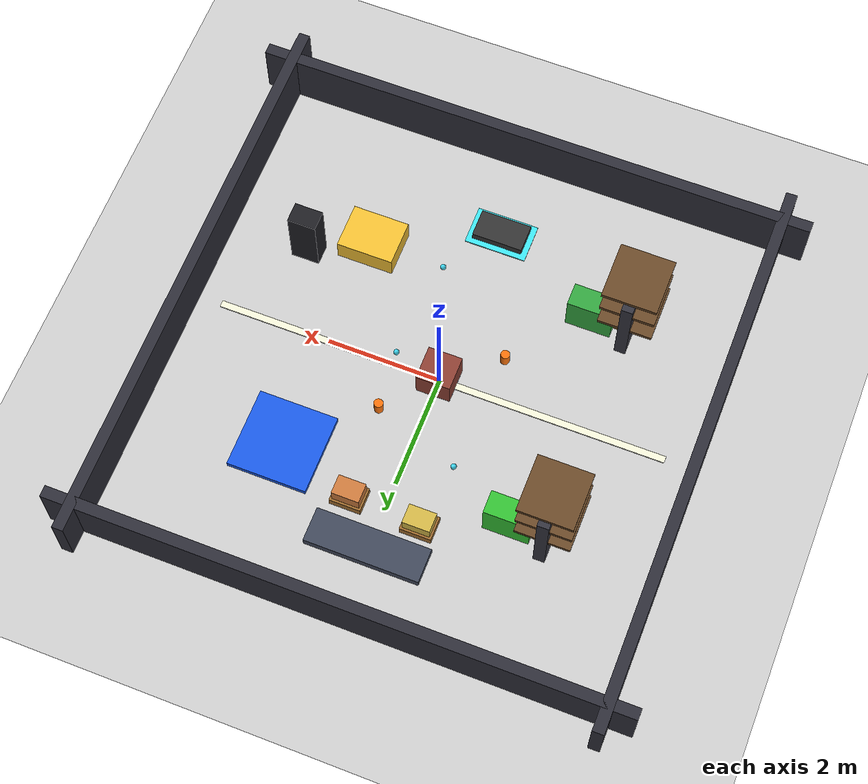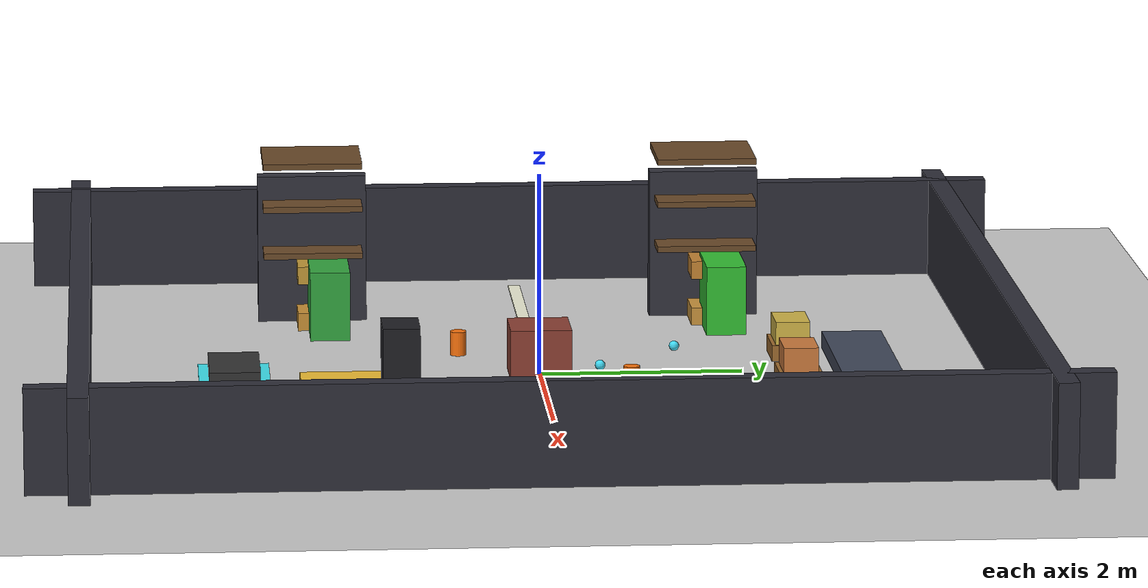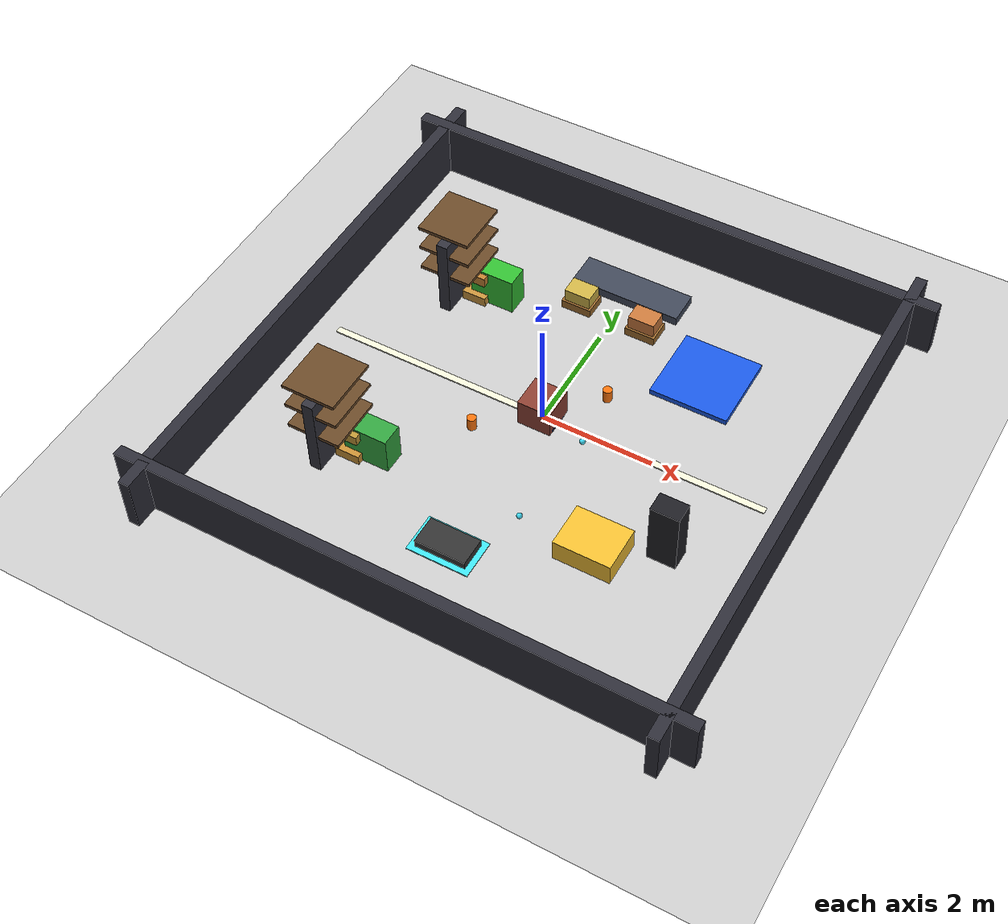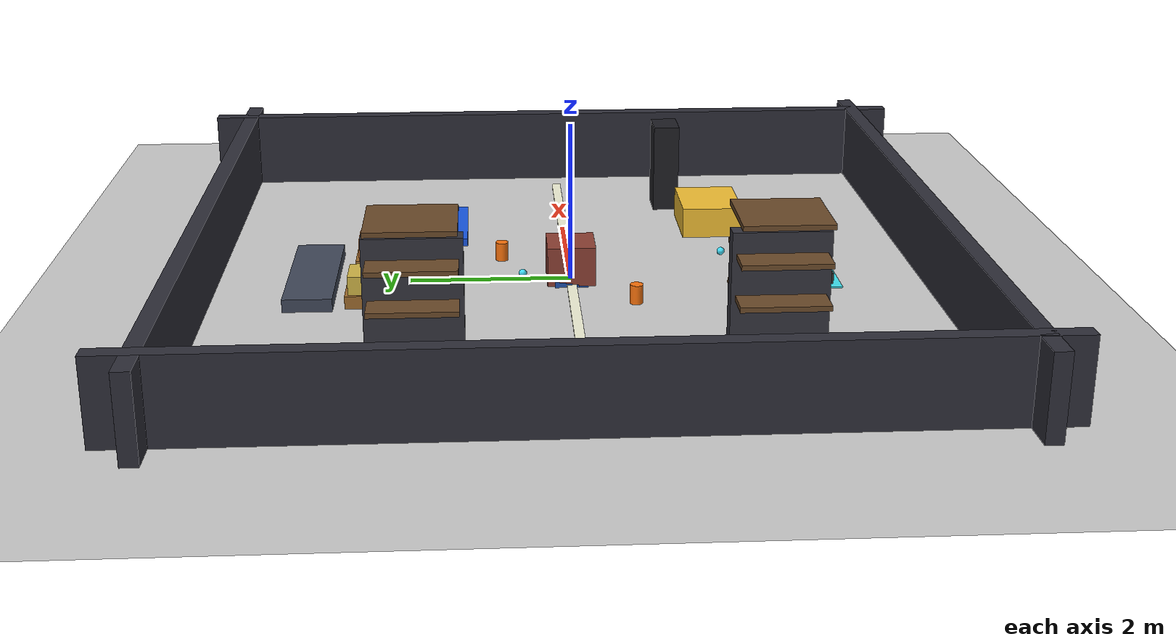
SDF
<?xml version="1.0" ?>
<sdf version="1.6">
  <world name="warehouse_world">
    <physics type="ode">
      <max_step_size>0.001</max_step_size>
      <real_time_update_rate>1000.0</real_time_update_rate>
      <real_time_factor>1.0</real_time_factor>
    </physics>

    <gravity>0 0 -9.8</gravity>
    <magnetic_field>0 0 0</magnetic_field>
    <atmosphere type="adiabatic" />

    <scene>
      <ambient>0.35 0.35 0.38 1</ambient>
      <background>0.94 0.95 0.98 1</background>
      <shadows>true</shadows>
    </scene>

    <light name="warehouse_sun" type="directional">
      <cast_shadows>true</cast_shadows>
      <pose>0 0 10 0 0 0</pose>
      <diffuse>0.95 0.95 0.92 1</diffuse>
      <specular>0.18 0.18 0.18 1</specular>
      <attenuation>
        <range>150</range>
        <constant>0.9</constant>
        <linear>0.01</linear>
        <quadratic>0.001</quadratic>
      </attenuation>
      <direction>-0.4 -0.35 -0.86</direction>
    </light>

    <light name="warehouse_fill" type="point">
      <cast_shadows>false</cast_shadows>
      <pose>-2 2 4 0 0 0</pose>
      <diffuse>0.45 0.42 0.38 1</diffuse>
      <specular>0.08 0.08 0.08 1</specular>
      <attenuation>
        <range>18</range>
        <constant>0.8</constant>
        <linear>0.03</linear>
        <quadratic>0.002</quadratic>
      </attenuation>
    </light>

    <gui fullscreen="0">
      <camera name="overview_camera">
        <pose>8 -8 7 0.72 0 0.83</pose>
      </camera>
    </gui>

    <include>
      <uri>model://sun</uri>
    </include>

    <include>
      <uri>model://ground_plane</uri>
    </include>

    <include>
      <uri>model://warehouse_robot</uri>
      <pose>0 0 0 0 0 0</pose>
    </include>

    <model name="shipping_dock">
      <static>true</static>
      <pose>0 3.2 0.08 0 0 0</pose>
      <link name="link">
        <collision name="collision">
          <geometry>
            <box><size>2.0 0.6 0.16</size></box>
          </geometry>
        </collision>
        <visual name="visual">
          <geometry>
            <box><size>2.0 0.6 0.16</size></box>
          </geometry>
          <material>
            <ambient>0.25 0.28 0.35 1</ambient>
            <diffuse>0.25 0.28 0.35 1</diffuse>
          </material>
        </visual>
      </link>
    </model>

    <model name="control_kiosk">
      <static>true</static>
      <pose>3.0 -1.5 0.60 0 0 0</pose>
      <link name="link">
        <collision name="collision">
          <geometry>
            <box><size>0.5 0.35 1.2</size></box>
          </geometry>
        </collision>
        <visual name="visual">
          <geometry>
            <box><size>0.5 0.35 1.2</size></box>
          </geometry>
          <material>
            <ambient>0.12 0.12 0.14 1</ambient>
            <diffuse>0.12 0.12 0.14 1</diffuse>
          </material>
        </visual>
        <visual name="screen_visual">
          <pose>0.23 0 0.25 0 0 0</pose>
          <geometry>
            <box><size>0.03 0.22 0.35</size></box>
          </geometry>
          <material>
            <ambient>0.10 0.55 0.75 1</ambient>
            <diffuse>0.10 0.55 0.75 1</diffuse>
          </material>
        </visual>
      </link>
    </model>

    <model name="safety_cone_1">
      <static>true</static>
      <pose>0.75 0.85 0.12 0 0 0</pose>
      <link name="link">
        <collision name="collision">
          <geometry>
            <cylinder><radius>0.08</radius><length>0.24</length></cylinder>
          </geometry>
        </collision>
        <visual name="visual">
          <geometry>
            <cylinder><radius>0.08</radius><length>0.24</length></cylinder>
          </geometry>
          <material>
            <ambient>0.98 0.45 0.05 1</ambient>
            <diffuse>0.98 0.45 0.05 1</diffuse>
          </material>
        </visual>
      </link>
    </model>

    <model name="safety_cone_2">
      <static>true</static>
      <pose>-0.9 -0.75 0.12 0 0 0</pose>
      <link name="link">
        <collision name="collision">
          <geometry>
            <cylinder><radius>0.08</radius><length>0.24</length></cylinder>
          </geometry>
        </collision>
        <visual name="visual">
          <geometry>
            <cylinder><radius>0.08</radius><length>0.24</length></cylinder>
          </geometry>
          <material>
            <ambient>0.98 0.45 0.05 1</ambient>
            <diffuse>0.98 0.45 0.05 1</diffuse>
          </material>
        </visual>
      </link>
    </model>

    <model name="shipping_pallet_1">
      <static>true</static>
      <pose>-0.65 2.55 0.08 0 0 0</pose>
      <link name="link">
        <collision name="collision">
          <geometry>
            <box><size>0.55 0.42 0.16</size></box>
          </geometry>
        </collision>
        <visual name="base_visual">
          <geometry>
            <box><size>0.55 0.42 0.16</size></box>
          </geometry>
          <material>
            <ambient>0.62 0.42 0.18 1</ambient>
            <diffuse>0.62 0.42 0.18 1</diffuse>
          </material>
        </visual>
        <visual name="crate_visual">
          <pose>0 0 0.16 0 0 0</pose>
          <geometry>
            <box><size>0.48 0.34 0.30</size></box>
          </geometry>
          <material>
            <ambient>0.82 0.71 0.28 1</ambient>
            <diffuse>0.82 0.71 0.28 1</diffuse>
          </material>
        </visual>
      </link>
    </model>

    <model name="shipping_pallet_2">
      <static>true</static>
      <pose>0.60 2.50 0.08 0 0 0</pose>
      <link name="link">
        <collision name="collision">
          <geometry>
            <box><size>0.55 0.42 0.16</size></box>
          </geometry>
        </collision>
        <visual name="base_visual">
          <geometry>
            <box><size>0.55 0.42 0.16</size></box>
          </geometry>
          <material>
            <ambient>0.62 0.42 0.18 1</ambient>
            <diffuse>0.62 0.42 0.18 1</diffuse>
          </material>
        </visual>
        <visual name="crate_visual">
          <pose>0 0 0.16 0 0 0</pose>
          <geometry>
            <box><size>0.48 0.34 0.34</size></box>
          </geometry>
          <material>
            <ambient>0.80 0.48 0.24 1</ambient>
            <diffuse>0.80 0.48 0.24 1</diffuse>
          </material>
        </visual>
      </link>
    </model>

    <model name="storage_rack_a">
      <static>true</static>
      <pose>-2.65 1.85 0.75 0 0 0</pose>
      <link name="link">
        <collision name="collision">
          <geometry>
            <box><size>0.20 1.10 1.50</size></box>
          </geometry>
        </collision>
        <visual name="frame_visual">
          <geometry>
            <box><size>0.20 1.10 1.50</size></box>
          </geometry>
          <material>
            <ambient>0.20 0.20 0.24 1</ambient>
            <diffuse>0.20 0.20 0.24 1</diffuse>
          </material>
        </visual>
        <visual name="deck_1_visual">
          <pose>0 0 0.48 0 0 0</pose>
          <geometry>
            <box><size>0.95 1.00 0.06</size></box>
          </geometry>
          <material>
            <ambient>0.42 0.29 0.16 1</ambient>
            <diffuse>0.42 0.29 0.16 1</diffuse>
          </material>
        </visual>
        <visual name="deck_2_visual">
          <pose>0 0 0.02 0 0 0</pose>
          <geometry>
            <box><size>0.95 1.00 0.06</size></box>
          </geometry>
          <material>
            <ambient>0.42 0.29 0.16 1</ambient>
            <diffuse>0.42 0.29 0.16 1</diffuse>
          </material>
        </visual>
        <visual name="deck_3_visual">
          <pose>0 0 0.92 0 0 0</pose>
          <geometry>
            <box><size>0.95 1.00 0.06</size></box>
          </geometry>
          <material>
            <ambient>0.42 0.29 0.16 1</ambient>
            <diffuse>0.42 0.29 0.16 1</diffuse>
          </material>
        </visual>
      </link>
    </model>

    <model name="storage_rack_b">
      <static>true</static>
      <pose>-2.65 -2.15 0.75 0 0 0</pose>
      <link name="link">
        <collision name="collision">
          <geometry>
            <box><size>0.20 1.10 1.50</size></box>
          </geometry>
        </collision>
        <visual name="frame_visual">
          <geometry>
            <box><size>0.20 1.10 1.50</size></box>
          </geometry>
          <material>
            <ambient>0.20 0.20 0.24 1</ambient>
            <diffuse>0.20 0.20 0.24 1</diffuse>
          </material>
        </visual>
        <visual name="deck_1_visual">
          <geometry>
            <box><size>0.95 1.00 0.06</size></box>
          </geometry>
          <material>
            <ambient>0.42 0.29 0.16 1</ambient>
            <diffuse>0.42 0.29 0.16 1</diffuse>
          </material>
        </visual>
        <visual name="deck_2_visual">
          <pose>0 0 0.48 0 0 0</pose>
          <geometry>
            <box><size>0.95 1.00 0.06</size></box>
          </geometry>
          <material>
            <ambient>0.42 0.29 0.16 1</ambient>
            <diffuse>0.42 0.29 0.16 1</diffuse>
          </material>
        </visual>
        <visual name="deck_3_visual">
          <pose>0 0 0.92 0 0 0</pose>
          <geometry>
            <box><size>0.95 1.00 0.06</size></box>
          </geometry>
          <material>
            <ambient>0.42 0.29 0.16 1</ambient>
            <diffuse>0.42 0.29 0.16 1</diffuse>
          </material>
        </visual>
      </link>
    </model>

    <model name="storage_pallet_a1">
      <static>true</static>
      <pose>-2.30 1.85 0.09 0 0 0</pose>
      <link name="link">
        <collision name="collision"><geometry><box><size>0.44 0.32 0.18</size></box></geometry></collision>
        <visual name="visual"><geometry><box><size>0.44 0.32 0.18</size></box></geometry><material><ambient>0.79 0.58 0.24 1</ambient><diffuse>0.79 0.58 0.24 1</diffuse></material></visual>
      </link>
    </model>

    <model name="storage_pallet_a2">
      <static>true</static>
      <pose>-2.30 1.85 0.57 0 0 0</pose>
      <link name="link">
        <collision name="collision"><geometry><box><size>0.44 0.32 0.18</size></box></geometry></collision>
        <visual name="visual"><geometry><box><size>0.44 0.32 0.18</size></box></geometry><material><ambient>0.77 0.52 0.20 1</ambient><diffuse>0.77 0.52 0.20 1</diffuse></material></visual>
      </link>
    </model>

    <model name="storage_pallet_b1">
      <static>true</static>
      <pose>-2.30 -2.15 0.57 0 0 0</pose>
      <link name="link">
        <collision name="collision"><geometry><box><size>0.44 0.32 0.18</size></box></geometry></collision>
        <visual name="visual"><geometry><box><size>0.44 0.32 0.18</size></box></geometry><material><ambient>0.76 0.60 0.22 1</ambient><diffuse>0.76 0.60 0.22 1</diffuse></material></visual>
      </link>
    </model>

    <model name="storage_pallet_b2">
      <static>true</static>
      <pose>-2.30 -2.15 0.09 0 0 0</pose>
      <link name="link">
        <collision name="collision"><geometry><box><size>0.44 0.32 0.18</size></box></geometry></collision>
        <visual name="visual"><geometry><box><size>0.44 0.32 0.18</size></box></geometry><material><ambient>0.79 0.57 0.21 1</ambient><diffuse>0.79 0.57 0.21 1</diffuse></material></visual>
      </link>
    </model>

    <model name="route_marker_1">
      <static>true</static>
      <pose>-0.8 1.4 0.08 0 0 0</pose>
      <link name="link">
        <collision name="collision"><geometry><sphere><radius>0.05</radius></sphere></geometry></collision>
        <visual name="visual"><geometry><sphere><radius>0.05</radius></sphere></geometry><material><ambient>0.25 0.85 0.95 1</ambient><diffuse>0.25 0.85 0.95 1</diffuse></material></visual>
      </link>
    </model>

    <model name="route_marker_2">
      <static>true</static>
      <pose>0.0 0.6 0.08 0 0 0</pose>
      <link name="link">
        <collision name="collision"><geometry><sphere><radius>0.05</radius></sphere></geometry></collision>
        <visual name="visual"><geometry><sphere><radius>0.05</radius></sphere></geometry><material><ambient>0.25 0.85 0.95 1</ambient><diffuse>0.25 0.85 0.95 1</diffuse></material></visual>
      </link>
    </model>

    <model name="route_marker_3">
      <static>true</static>
      <pose>0.85 -0.2 0.08 0 0 0</pose>
      <link name="link">
        <collision name="collision"><geometry><sphere><radius>0.05</radius></sphere></geometry></collision>
        <visual name="visual"><geometry><sphere><radius>0.05</radius></sphere></geometry><material><ambient>0.25 0.85 0.95 1</ambient><diffuse>0.25 0.85 0.95 1</diffuse></material></visual>
      </link>
    </model>

    <model name="route_marker_4">
      <static>true</static>
      <pose>0.7 -2.0 0.08 0 0 0</pose>
      <link name="link">
        <collision name="collision"><geometry><sphere><radius>0.05</radius></sphere></geometry></collision>
        <visual name="visual"><geometry><sphere><radius>0.05</radius></sphere></geometry><material><ambient>0.25 0.85 0.95 1</ambient><diffuse>0.25 0.85 0.95 1</diffuse></material></visual>
      </link>
    </model>

    <model name="route_marker_5">
      <static>true</static>
      <pose>0.05 -2.9 0.08 0 0 0</pose>
      <link name="link">
        <collision name="collision"><geometry><sphere><radius>0.05</radius></sphere></geometry></collision>
        <visual name="visual"><geometry><sphere><radius>0.05</radius></sphere></geometry><material><ambient>0.25 0.85 0.95 1</ambient><diffuse>0.25 0.85 0.95 1</diffuse></material></visual>
      </link>
    </model>

    <model name="receiving_zone">
      <static>true</static>
      <pose>2 2 0.05 0 0 0</pose>
      <link name="link">
        <collision name="collision">
          <geometry>
            <box><size>1.4 1.4 0.1</size></box>
          </geometry>
        </collision>
        <visual name="visual">
          <geometry>
            <box><size>1.4 1.4 0.1</size></box>
          </geometry>
          <material>
            <ambient>0.1 0.35 0.9 1</ambient>
            <diffuse>0.1 0.35 0.9 1</diffuse>
          </material>
        </visual>
      </link>
    </model>

    <model name="storage_shelf_a">
      <static>true</static>
      <pose>-2 2 0.35 0 0 0</pose>
      <link name="link">
        <collision name="collision">
          <geometry>
            <box><size>0.8 0.4 0.7</size></box>
          </geometry>
        </collision>
        <visual name="visual">
          <geometry>
            <box><size>0.8 0.4 0.7</size></box>
          </geometry>
          <material>
            <ambient>0.2 0.75 0.2 1</ambient>
            <diffuse>0.2 0.75 0.2 1</diffuse>
          </material>
        </visual>
      </link>
    </model>

    <model name="storage_shelf_b">
      <static>true</static>
      <pose>-2 -2 0.35 0 0 0</pose>
      <link name="link">
        <collision name="collision">
          <geometry>
            <box><size>0.8 0.4 0.7</size></box>
          </geometry>
        </collision>
        <visual name="visual">
          <geometry>
            <box><size>0.8 0.4 0.7</size></box>
          </geometry>
          <material>
            <ambient>0.2 0.65 0.25 1</ambient>
            <diffuse>0.2 0.65 0.25 1</diffuse>
          </material>
        </visual>
      </link>
    </model>

    <model name="packing_station">
      <static>true</static>
      <pose>2 -2 0.20 0 0 0</pose>
      <link name="link">
        <collision name="collision">
          <geometry>
            <box><size>1.0 0.8 0.4</size></box>
          </geometry>
        </collision>
        <visual name="visual">
          <geometry>
            <box><size>1.0 0.8 0.4</size></box>
          </geometry>
          <material>
            <ambient>0.95 0.75 0.2 1</ambient>
            <diffuse>0.95 0.75 0.2 1</diffuse>
          </material>
        </visual>
      </link>
    </model>

    <model name="charging_station">
      <static>true</static>
      <pose>0 -3 0.08 0 0 0</pose>
      <link name="link">
        <collision name="collision">
          <geometry>
            <box><size>0.9 0.5 0.16</size></box>
          </geometry>
        </collision>
        <visual name="visual">
          <geometry>
            <box><size>0.9 0.5 0.16</size></box>
          </geometry>
          <material>
            <ambient>0.2 0.2 0.2 1</ambient>
            <diffuse>0.2 0.2 0.2 1</diffuse>
          </material>
        </visual>
      </link>
    </model>

    <model name="aisle_obstacle">
      <static>true</static>
      <pose>0 0 0.25 0 0 0</pose>
      <link name="link">
        <collision name="collision">
          <geometry>
            <box><size>0.6 0.6 0.5</size></box>
          </geometry>
        </collision>
        <visual name="visual">
          <geometry>
            <box><size>0.6 0.6 0.5</size></box>
          </geometry>
          <material>
            <ambient>0.55 0.25 0.2 1</ambient>
            <diffuse>0.55 0.25 0.2 1</diffuse>
          </material>
        </visual>
      </link>
    </model>

    <model name="aisle_wall_north">
      <static>true</static>
      <pose>0 4.5 0.5 0 0 0</pose>
      <link name="link">
        <collision name="collision">
          <geometry>
            <box><size>10 0.2 1</size></box>
          </geometry>
        </collision>
        <visual name="visual">
          <geometry>
            <box><size>10 0.2 1</size></box>
          </geometry>
          <material>
            <ambient>0.18 0.18 0.22 1</ambient>
            <diffuse>0.18 0.18 0.22 1</diffuse>
          </material>
        </visual>
      </link>
    </model>

    <model name="aisle_wall_south">
      <static>true</static>
      <pose>0 -4.5 0.5 0 0 0</pose>
      <link name="link">
        <collision name="collision">
          <geometry>
            <box><size>10 0.2 1</size></box>
          </geometry>
        </collision>
        <visual name="visual">
          <geometry>
            <box><size>10 0.2 1</size></box>
          </geometry>
          <material>
            <ambient>0.18 0.18 0.22 1</ambient>
            <diffuse>0.18 0.18 0.22 1</diffuse>
          </material>
        </visual>
      </link>
    </model>

    <model name="aisle_wall_east">
      <static>true</static>
      <pose>4.5 0 0.5 0 0 0</pose>
      <link name="link">
        <collision name="collision">
          <geometry>
            <box><size>0.2 10 1</size></box>
          </geometry>
        </collision>
        <visual name="visual">
          <geometry>
            <box><size>0.2 10 1</size></box>
          </geometry>
          <material>
            <ambient>0.18 0.18 0.22 1</ambient>
            <diffuse>0.18 0.18 0.22 1</diffuse>
          </material>
        </visual>
      </link>
    </model>

    <model name="aisle_wall_west">
      <static>true</static>
      <pose>-4.5 0 0.5 0 0 0</pose>
      <link name="link">
        <collision name="collision">
          <geometry>
            <box><size>0.2 10 1</size></box>
          </geometry>
        </collision>
        <visual name="visual">
          <geometry>
            <box><size>0.2 10 1</size></box>
          </geometry>
          <material>
            <ambient>0.18 0.18 0.22 1</ambient>
            <diffuse>0.18 0.18 0.22 1</diffuse>
          </material>
        </visual>
      </link>
    </model>

    <model name="center_lane_marking">
      <static>true</static>
      <pose>0 0 0.011 0 0 0</pose>
      <link name="link">
        <collision name="collision">
          <geometry>
            <box><size>8.0 0.12 0.02</size></box>
          </geometry>
        </collision>
        <visual name="visual">
          <geometry>
            <box><size>8.0 0.12 0.02</size></box>
          </geometry>
          <material>
            <ambient>0.95 0.95 0.85 1</ambient>
            <diffuse>0.95 0.95 0.85 1</diffuse>
          </material>
        </visual>
      </link>
    </model>

    <model name="charge_pad_marker">
      <static>true</static>
      <pose>0 -3 0.012 0 0 0</pose>
      <link name="link">
        <collision name="collision">
          <geometry>
            <box><size>1.1 0.7 0.02</size></box>
          </geometry>
        </collision>
        <visual name="visual">
          <geometry>
            <box><size>1.1 0.7 0.02</size></box>
          </geometry>
          <material>
            <ambient>0.25 0.9 0.95 1</ambient>
            <diffuse>0.25 0.9 0.95 1</diffuse>
          </material>
        </visual>
      </link>
    </model>
  </world>
</sdf>

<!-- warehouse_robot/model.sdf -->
<sdf version="1.6">
  <model name="warehouse_robot">
    <static>false</static>
    <link name="base_link">
      <pose>0 0 0 0 0 0</pose>
      <inertial>
        <mass>18.0</mass>
        <inertia>
          <ixx>1.2</ixx><ixy>0.0</ixy><ixz>0.0</ixz>
          <iyy>2.0</iyy><iyz>0.0</iyz><izz>2.4</izz>
        </inertia>
      </inertial>
      <collision name="base_collision">
        <geometry>
          <box><size>0.60 0.42 0.12</size></box>
        </geometry>
      </collision>
      <visual name="base_visual">
        <geometry>
          <box><size>0.60 0.42 0.12</size></box>
        </geometry>
        <material>
          <ambient>0.12 0.32 0.68 1</ambient>
          <diffuse>0.12 0.32 0.68 1</diffuse>
          <specular>0.2 0.2 0.25 1</specular>
        </material>
      </visual>

      <visual name="deck_visual">
        <pose>0 0 0.08 0 0 0</pose>
        <geometry>
          <box><size>0.48 0.30 0.02</size></box>
        </geometry>
        <material>
          <ambient>0.35 0.38 0.42 1</ambient>
          <diffuse>0.35 0.38 0.42 1</diffuse>
        </material>
      </visual>

      <visual name="front_trim_visual">
        <pose>0.20 0 0.045 0 0 0</pose>
        <geometry>
          <box><size>0.03 0.36 0.07</size></box>
        </geometry>
        <material>
          <ambient>0.07 0.07 0.08 1</ambient>
          <diffuse>0.07 0.07 0.08 1</diffuse>
        </material>
      </visual>

      <visual name="rear_trim_visual">
        <pose>-0.20 0 0.045 0 0 0</pose>
        <geometry>
          <box><size>0.03 0.36 0.07</size></box>
        </geometry>
        <material>
          <ambient>0.07 0.07 0.08 1</ambient>
          <diffuse>0.07 0.07 0.08 1</diffuse>
        </material>
      </visual>
    </link>

    <link name="mast_link">
      <pose>0.05 0 0.24 0 0 0</pose>
      <inertial>
        <mass>2.0</mass>
        <inertia>
          <ixx>0.05</ixx><ixy>0.0</ixy><ixz>0.0</ixz>
          <iyy>0.05</iyy><iyz>0.0</iyz><izz>0.02</izz>
        </inertia>
      </inertial>
      <collision name="mast_collision">
        <geometry>
          <box><size>0.10 0.10 0.24</size></box>
        </geometry>
      </collision>
      <visual name="mast_visual">
        <geometry>
          <box><size>0.10 0.10 0.24</size></box>
        </geometry>
        <material>
          <ambient>0.34 0.34 0.35 1</ambient>
          <diffuse>0.34 0.34 0.35 1</diffuse>
        </material>
      </visual>
    </link>

    <link name="sensor_link">
      <pose>0.23 0 0.36 0 0 0</pose>
      <inertial>
        <mass>0.4</mass>
        <inertia>
          <ixx>0.01</ixx><ixy>0.0</ixy><ixz>0.0</ixz>
          <iyy>0.01</iyy><iyz>0.0</iyz><izz>0.01</izz>
        </inertia>
      </inertial>
      <collision name="sensor_collision">
        <geometry>
          <cylinder><radius>0.04</radius><length>0.06</length></cylinder>
        </geometry>
      </collision>
      <visual name="sensor_visual">
        <geometry>
          <cylinder><radius>0.04</radius><length>0.06</length></cylinder>
        </geometry>
        <material>
          <ambient>0.95 0.45 0.10 1</ambient>
          <diffuse>0.95 0.45 0.10 1</diffuse>
        </material>
      </visual>

      <visual name="sensor_cap_visual">
        <pose>0.0 0 0.05 0 0 0</pose>
        <geometry>
          <sphere><radius>0.024</radius></sphere>
        </geometry>
        <material>
          <ambient>0.98 0.76 0.18 1</ambient>
          <diffuse>0.98 0.76 0.18 1</diffuse>
        </material>
      </visual>
    </link>

    <link name="left_wheel_link">
      <pose>0 -0.22 0.03 0 1.570796 0</pose>
      <collision name="left_wheel_collision">
        <geometry>
          <cylinder><radius>0.05</radius><length>0.03</length></cylinder>
        </geometry>
      </collision>
      <visual name="left_wheel_visual">
        <geometry>
          <cylinder><radius>0.05</radius><length>0.03</length></cylinder>
        </geometry>
        <material>
          <ambient>0.05 0.05 0.05 1</ambient>
          <diffuse>0.05 0.05 0.05 1</diffuse>
        </material>
      </visual>
    </link>

    <link name="right_wheel_link">
      <pose>0 0.22 0.03 0 1.570796 0</pose>
      <collision name="right_wheel_collision">
        <geometry>
          <cylinder><radius>0.05</radius><length>0.03</length></cylinder>
        </geometry>
      </collision>
      <visual name="right_wheel_visual">
        <geometry>
          <cylinder><radius>0.05</radius><length>0.03</length></cylinder>
        </geometry>
        <material>
          <ambient>0.05 0.05 0.05 1</ambient>
          <diffuse>0.05 0.05 0.05 1</diffuse>
        </material>
      </visual>
    </link>

    <link name="caster_link">
      <pose>-0.20 0 0.02 0 0 0</pose>
      <collision name="caster_collision">
        <geometry>
          <sphere><radius>0.04</radius></sphere>
        </geometry>
      </collision>
      <visual name="caster_visual">
        <geometry>
          <sphere><radius>0.04</radius></sphere>
        </geometry>
        <material>
          <ambient>0.08 0.08 0.08 1</ambient>
          <diffuse>0.08 0.08 0.08 1</diffuse>
        </material>
      </visual>
    </link>

    <link name="status_light_link">
      <pose>0.00 0 0.46 0 0 0</pose>
      <collision name="status_light_collision">
        <geometry>
          <sphere><radius>0.03</radius></sphere>
        </geometry>
      </collision>
      <visual name="status_light_visual">
        <geometry>
          <sphere><radius>0.03</radius></sphere>
        </geometry>
        <material>
          <ambient>0.18 0.9 0.35 1</ambient>
          <diffuse>0.18 0.9 0.35 1</diffuse>
        </material>
      </visual>
    </link>

    <link name="cargo_box_link">
      <pose>0.00 0 0.09 0 0 0</pose>
      <collision name="cargo_box_collision">
        <geometry>
          <box><size>0.20 0.16 0.12</size></box>
        </geometry>
      </collision>
      <visual name="cargo_box_visual">
        <geometry>
          <box><size>0.20 0.16 0.12</size></box>
        </geometry>
        <material>
          <ambient>0.82 0.67 0.18 1</ambient>
          <diffuse>0.82 0.67 0.18 1</diffuse>
        </material>
      </visual>
    </link>

    <joint name="base_to_mast" type="fixed">
      <parent>base_link</parent>
      <child>mast_link</child>
    </joint>

    <joint name="mast_to_sensor" type="fixed">
      <parent>mast_link</parent>
      <child>sensor_link</child>
    </joint>

    <joint name="base_to_left_wheel" type="fixed">
      <parent>base_link</parent>
      <child>left_wheel_link</child>
    </joint>

    <joint name="base_to_right_wheel" type="fixed">
      <parent>base_link</parent>
      <child>right_wheel_link</child>
    </joint>

    <joint name="base_to_caster" type="fixed">
      <parent>base_link</parent>
      <child>caster_link</child>
    </joint>

    <joint name="base_to_status_light" type="fixed">
      <parent>base_link</parent>
      <child>status_light_link</child>
    </joint>

    <joint name="base_to_cargo_box" type="fixed">
      <parent>base_link</parent>
      <child>cargo_box_link</child>
    </joint>

    <plugin name="random_velocity_motion" filename="libRandomVelocityPlugin.so">
      <link>base_link</link>
      <min_x>0.20</min_x>
      <max_x>0.35</max_x>
      <min_y>-0.10</min_y>
      <max_y>0.10</max_y>
      <min_z>0.00</min_z>
      <max_z>0.00</max_z>
      <initial_velocity>0.28 0.0 0.0 0.0 0.0 0.0</initial_velocity>
      <velocity_factor>1.0</velocity_factor>
      <update_period>2.5</update_period>
    </plugin>
  </model>
</sdf>
